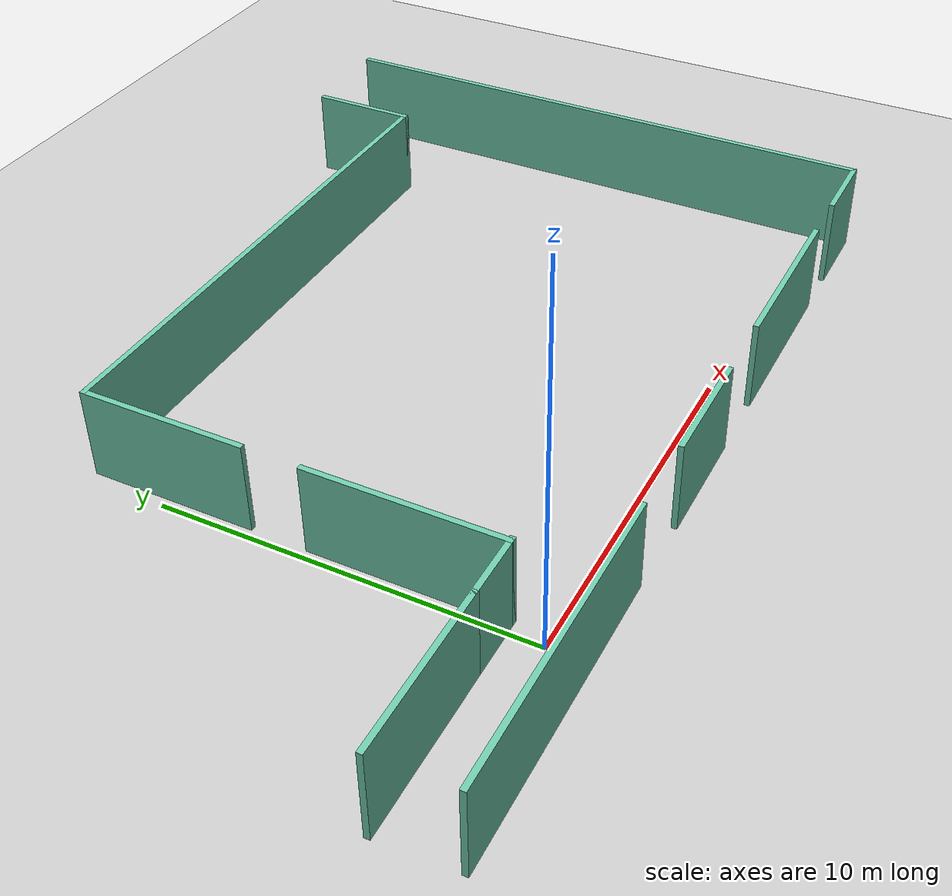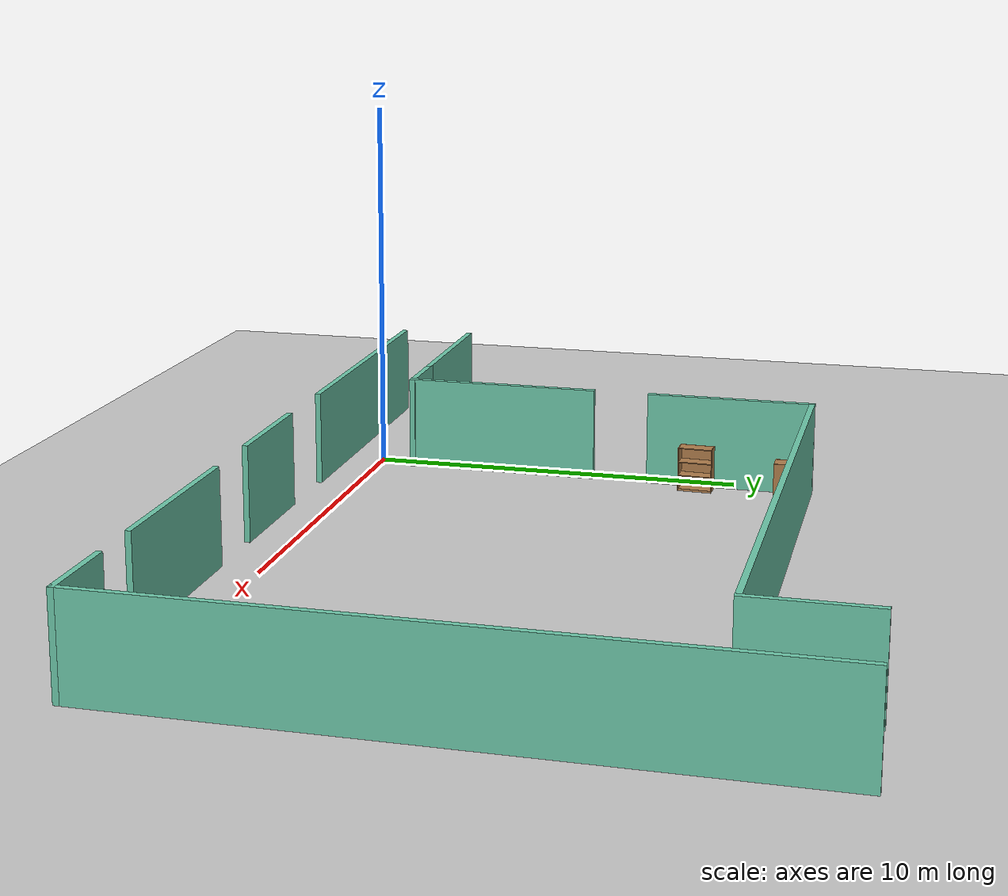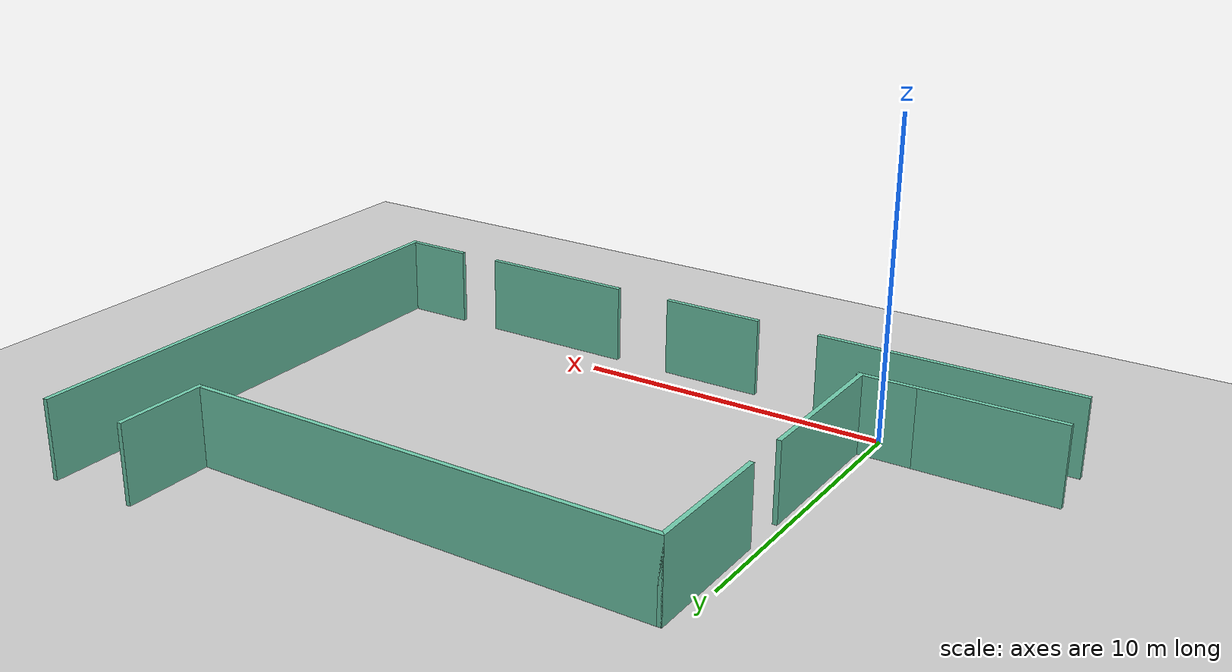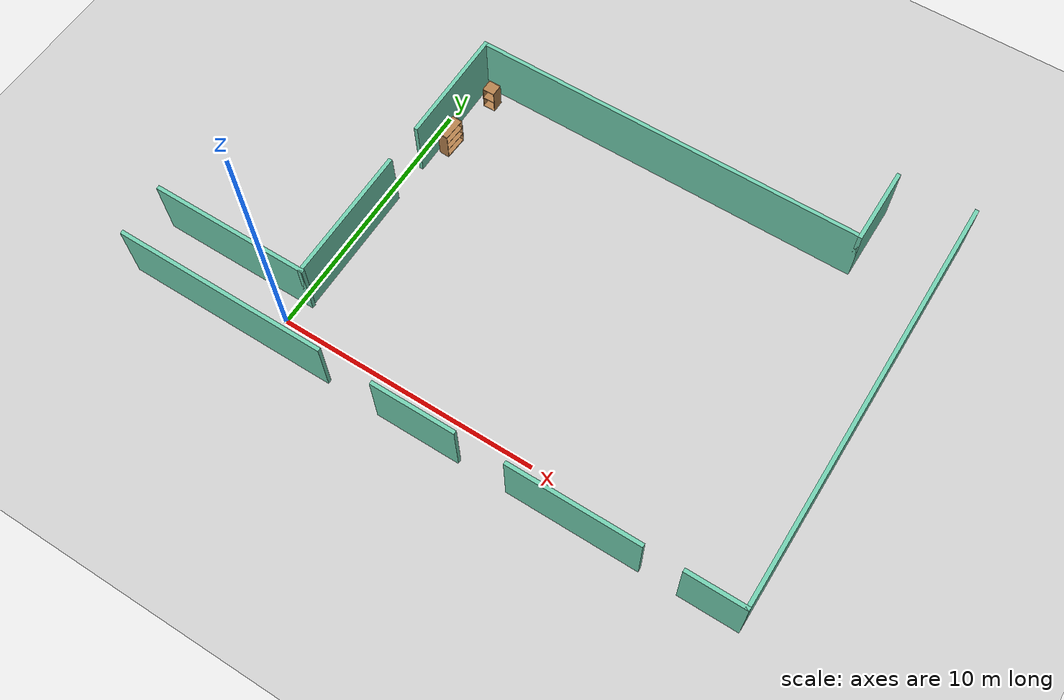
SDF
<sdf version="1.6">
 <world name="default">
  <light name="sun" type="directional">
   <pose>0 0 10 0 -0 0</pose>
   <diffuse>0.8 0.8 0.8 1</diffuse>
   <specular>0.2 0.2 0.2 1</specular>
   <attenuation>
    <range>1000</range>
    <constant>0.9</constant>
    <linear>0.01</linear>
    <quadratic>0.001</quadratic>
   </attenuation>
   <direction>-0.5 0.1 -0.9</direction>
  </light>
  <model name="ground_plane">
   <static>1</static>
   <link name="link">
    <collision name="collision">
     <geometry><plane><normal>0 0 1</normal><size>100 100</size></plane></geometry>
     <surface>
      <contact><collide_bitmask>65535</collide_bitmask></contact>
      <friction><ode><mu>100</mu><mu2>50</mu2></ode></friction>
     </surface>
    </collision>
    <visual name="visual">
     <cast_shadows>0</cast_shadows>
     <geometry><plane><normal>0 0 1</normal><size>100 100</size></plane></geometry>
     <material>
      <script><uri>file://media/materials/scripts/gazebo.material</uri><name>Gazebo/Grey</name></script>
     </material>
    </visual>
   </link>
  </model>
  <gravity>0 0 -9.8</gravity>
  <magnetic_field>6e-06 2.3e-05 -4.2e-05</magnetic_field>
  <atmosphere type="adiabatic"/>
  <physics name="default_physics" default="0" type="ode">
   <max_step_size>0.001</max_step_size>
   <real_time_factor>1</real_time_factor>
   <real_time_update_rate>1000</real_time_update_rate>
  </physics>
  <scene><ambient>0.4 0.4 0.4 1</ambient><background>0.7 0.7 0.7 1</background><shadows>1</shadows></scene>
  <audio><device>default</device></audio>
  <spherical_coordinates>
   <surface_model>EARTH_WGS84</surface_model>
   <latitude_deg>0</latitude_deg>
   <longitude_deg>0</longitude_deg>
   <elevation>0</elevation>
   <heading_deg>0</heading_deg>
  </spherical_coordinates>
  <model name="break_room">
   <pose>6.31041 6.95455 0 0 -0 0</pose>
   <link name="Wall_0">
    <collision name="Wall_0_Collision">
     <geometry><box><size>1.84305 0.15 2.5</size></box></geometry>
     <pose>0 0 1.25 0 -0 0</pose>
    </collision>
    <visual name="Wall_0_Visual">
     <pose>0 0 1.25 0 -0 0</pose>
     <geometry><box><size>1.84305 0.15 2.5</size></box></geometry>
     <material>
      <script><uri>file://media/materials/scripts/gazebo.material</uri><name>Gazebo/Grey</name></script>
      <ambient>0.435294 0.796078 0.67451 1</ambient>
     </material>
     <meta><layer>0</layer></meta>
    </visual>
    <pose>-6.79511 -5.97585 0 0 -0 0</pose>
   </link>
   <link name="Wall_1">
    <collision name="Wall_1_Collision">
     <geometry><box><size>5.25 0.15 2.5</size></box></geometry>
     <pose>0 0 1.25 0 -0 0</pose>
    </collision>
    <visual name="Wall_1_Visual">
     <pose>0 0 1.25 0 -0 0</pose>
     <geometry><box><size>5.25 0.15 2.5</size></box></geometry>
     <material>
      <script><uri>file://media/materials/scripts/gazebo.material</uri><name>Gazebo/Grey</name></script>
      <ambient>0.435294 0.796078 0.67451 1</ambient>
     </material>
     <meta><layer>0</layer></meta>
    </visual>
    <pose>-5.99511 -3.42585 0 0 -0 1.5708</pose>
   </link>
   <link name="Wall_10">
    <collision name="Wall_10_Collision">
     <geometry><box><size>5 0.15 2.5</size></box></geometry>
     <pose>0 0 1.25 0 -0 0</pose>
    </collision>
    <visual name="Wall_10_Visual">
     <pose>0 0 1.25 0 -0 0</pose>
     <geometry><box><size>5 0.15 2.5</size></box></geometry>
     <material>
      <script><uri>file://media/materials/scripts/gazebo.material</uri><name>Gazebo/Grey</name></script>
      <ambient>0.435294 0.796078 0.67451 1</ambient>
     </material>
     <meta><layer>0</layer></meta>
    </visual>
    <pose>5.93776 -8.04727 0 0 -0 3.14159</pose>
   </link>
   <link name="Wall_12">
    <collision name="Wall_12_Collision">
     <geometry><box><size>3.25 0.15 2.5</size></box></geometry>
     <pose>0 0 1.25 0 -0 0</pose>
    </collision>
    <visual name="Wall_12_Visual">
     <pose>0 0 1.25 0 -0 0</pose>
     <geometry><box><size>3.25 0.15 2.5</size></box></geometry>
     <material>
      <script><uri>file://media/materials/scripts/gazebo.material</uri><name>Gazebo/Grey</name></script>
      <ambient>0.435294 0.796078 0.67451 1</ambient>
     </material>
     <meta><layer>0</layer></meta>
    </visual>
    <pose>-0.02625 -8.04727 0 0 -0 3.14159</pose>
   </link>
   <link name="Wall_14">
    <collision name="Wall_14_Collision">
     <geometry><box><size>8.25 0.15 2.5</size></box></geometry>
     <pose>0 0 1.25 0 -0 0</pose>
    </collision>
    <visual name="Wall_14_Visual">
     <pose>0 0 1.25 0 -0 0</pose>
     <geometry><box><size>8.25 0.15 2.5</size></box></geometry>
     <material>
      <script><uri>file://media/materials/scripts/gazebo.material</uri><name>Gazebo/Grey</name></script>
      <ambient>0.435294 0.796078 0.67451 1</ambient>
     </material>
     <meta><layer>0</layer></meta>
    </visual>
    <pose>-7.82998 -8.00075 0 0 -0 3.14159</pose>
   </link>
   <link name="Wall_16">
    <collision name="Wall_16_Collision">
     <geometry><box><size>4.5 0.15 2.5</size></box></geometry>
     <pose>0 0 1.25 0 -0 0</pose>
    </collision>
    <visual name="Wall_16_Visual">
     <pose>0 0 1.25 0 -0 0</pose>
     <geometry><box><size>4.5 0.15 2.5</size></box></geometry>
     <material>
      <script><uri>file://media/materials/scripts/gazebo.material</uri><name>Gazebo/Grey</name></script>
      <ambient>0.435294 0.796078 0.67451 1</ambient>
     </material>
     <meta><layer>0</layer></meta>
    </visual>
    <pose>-9.81663 -5.97585 0 0 -0 3.14159</pose>
   </link>
   <link name="Wall_3">
    <collision name="Wall_3_Collision">
     <geometry><box><size>4.5 0.15 2.5</size></box></geometry>
     <pose>0 0 1.25 0 -0 0</pose>
    </collision>
    <visual name="Wall_3_Visual">
     <pose>0 0 1.25 0 -0 0</pose>
     <geometry><box><size>4.5 0.15 2.5</size></box></geometry>
     <material>
      <script><uri>file://media/materials/scripts/gazebo.material</uri><name>Gazebo/Grey</name></script>
      <ambient>0.435294 0.796078 0.67451 1</ambient>
     </material>
     <meta><layer>0</layer></meta>
    </visual>
    <pose>-5.98079 2.93498 0 0 -0 1.5708</pose>
   </link>
   <link name="Wall_4">
    <collision name="Wall_4_Collision">
     <geometry><box><size>15.25 0.15 2.5</size></box></geometry>
     <pose>0 0 1.25 0 -0 0</pose>
    </collision>
    <visual name="Wall_4_Visual">
     <pose>0 0 1.25 0 -0 0</pose>
     <geometry><box><size>15.25 0.15 2.5</size></box></geometry>
     <material>
      <script><uri>file://media/materials/scripts/gazebo.material</uri><name>Gazebo/Grey</name></script>
      <ambient>0.435294 0.796078 0.67451 1</ambient>
     </material>
     <meta><layer>0</layer></meta>
    </visual>
    <pose>1.56921 5.10998 0 0 -0 0</pose>
   </link>
   <link name="Wall_5">
    <collision name="Wall_5_Collision">
     <geometry><box><size>3 0.15 2.5</size></box></geometry>
     <pose>0 0 1.25 0 -0 0</pose>
    </collision>
    <visual name="Wall_5_Visual">
     <pose>0 0 1.25 0 -0 0</pose>
     <geometry><box><size>3 0.15 2.5</size></box></geometry>
     <material>
      <script><uri>file://media/materials/scripts/gazebo.material</uri><name>Gazebo/Grey</name></script>
      <ambient>0.435294 0.796078 0.67451 1</ambient>
     </material>
     <meta><layer>0</layer></meta>
    </visual>
    <pose>9.11921 6.53498 0 0 -0 1.5708</pose>
   </link>
   <link name="Wall_7">
    <collision name="Wall_7_Collision">
     <geometry><box><size>16.25 0.15 2.5</size></box></geometry>
     <pose>0 0 1.25 0 -0 0</pose>
    </collision>
    <visual name="Wall_7_Visual">
     <pose>0 0 1.25 0 -0 0</pose>
     <geometry><box><size>16.25 0.15 2.5</size></box></geometry>
     <material>
      <script><uri>file://media/materials/scripts/gazebo.material</uri><name>Gazebo/Grey</name></script>
      <ambient>0.435294 0.796078 0.67451 1</ambient>
     </material>
     <meta><layer>0</layer></meta>
    </visual>
    <pose>11.9916 0 0 0 -0 -1.5708</pose>
   </link>
   <link name="Wall_8">
    <collision name="Wall_8_Collision">
     <geometry><box><size>2.25 0.15 2.5</size></box></geometry>
     <pose>0 0 1.25 0 -0 0</pose>
    </collision>
    <visual name="Wall_8_Visual">
     <pose>0 0 1.25 0 -0 0</pose>
     <geometry><box><size>2.25 0.15 2.5</size></box></geometry>
     <material>
      <script><uri>file://media/materials/scripts/gazebo.material</uri><name>Gazebo/Grey</name></script>
      <ambient>0.435294 0.796078 0.67451 1</ambient>
     </material>
     <meta><layer>0</layer></meta>
    </visual>
    <pose>10.9416 -8.05 0 0 -0 3.14159</pose>
   </link>
   <static>1</static>
  </model>
  <model name="cabinet">
   <static>1</static>
   <link name="cabinet_bottom_plate">
    <inertial>
     <pose>0 0 -1 0 -0 0</pose>
     <inertia><ixx>2.05</ixx><ixy>0</ixy><ixz>0</ixz><iyy>2.05</iyy><iyz>0</iyz><izz>2.05</izz></inertia>
     <mass>25</mass>
    </inertial>
    <collision name="cabinet_bottom_plate_geom">
     <pose>0 0 0.01 0 -0 0</pose>
     <geometry><box><size>0.45 0.45 0.02</size></box></geometry>
    </collision>
    <visual name="cabinet_bottom_plate_geom_visual">
     <pose>0 0 0.01 0 -0 0</pose>
     <geometry><box><size>0.45 0.45 0.02</size></box></geometry>
     <material>
      <script><uri>file://media/materials/scripts/gazebo.material</uri><name>Gazebo/Wood</name></script>
     </material>
    </visual>
    <collision name="cabinet_bottom_plate_geom_cabinet_back_plate">
     <pose>0.235 0 0.51 0 -0 0</pose>
     <geometry><box><size>0.02 0.45 1.02</size></box></geometry>
    </collision>
    <visual name="cabinet_bottom_plate_geom_cabinet_back_plate_visual">
     <pose>0.235 0 0.51 0 -0 0</pose>
     <geometry><box><size>0.02 0.45 1.02</size></box></geometry>
     <material>
      <script><uri>file://media/materials/scripts/gazebo.material</uri><name>Gazebo/Wood</name></script>
     </material>
    </visual>
    <collision name="cabinet_bottom_plate_geom_cabinet_left_plate">
     <pose>0 0.235 0.51 0 -0 0</pose>
     <geometry><box><size>0.45 0.02 1.02</size></box></geometry>
    </collision>
    <visual name="cabinet_bottom_plate_geom_cabinet_left_plate_visual">
     <pose>0 0.235 0.51 0 -0 0</pose>
     <geometry><box><size>0.45 0.02 1.02</size></box></geometry>
     <material>
      <script><uri>file://media/materials/scripts/gazebo.material</uri><name>Gazebo/Wood</name></script>
     </material>
    </visual>
    <collision name="cabinet_bottom_plate_geom_cabinet_middle_plate">
     <pose>0 0 0.51 0 -0 0</pose>
     <geometry><box><size>0.45 0.45 0.02</size></box></geometry>
    </collision>
    <visual name="cabinet_bottom_plate_geom_cabinet_middle_plate_visual">
     <pose>0 0 0.51 0 -0 0</pose>
     <geometry><box><size>0.45 0.45 0.02</size></box></geometry>
     <material>
      <script><uri>file://media/materials/scripts/gazebo.material</uri><name>Gazebo/Wood</name></script>
     </material>
    </visual>
    <collision name="cabinet_bottom_plate_geom_cabinet_right_plate">
     <pose>0 -0.235 0.51 0 -0 0</pose>
     <geometry><box><size>0.45 0.02 1.02</size></box></geometry>
    </collision>
    <visual name="cabinet_bottom_plate_geom_cabinet_right_plate_visual">
     <pose>0 -0.235 0.51 0 -0 0</pose>
     <geometry><box><size>0.45 0.02 1.02</size></box></geometry>
     <material>
      <script><uri>file://media/materials/scripts/gazebo.material</uri><name>Gazebo/Wood</name></script>
     </material>
    </visual>
    <collision name="cabinet_bottom_plate_geom_cabinet_top_plate">
     <pose>0 0 1.01 0 -0 0</pose>
     <geometry><box><size>0.45 0.45 0.02</size></box></geometry>
    </collision>
    <visual name="cabinet_bottom_plate_geom_cabinet_top_plate_visual">
     <pose>0 0 1.01 0 -0 0</pose>
     <geometry><box><size>0.45 0.45 0.02</size></box></geometry>
     <material>
      <script><uri>file://media/materials/scripts/gazebo.material</uri><name>Gazebo/Wood</name></script>
     </material>
    </visual>
   </link>
   <pose>0.95391 11.4121 0 0 -0 1.56954</pose>
  </model>
  <model name="bookshelf">
   <static>1</static>
   <link name="link">
    <inertial><mass>1</mass></inertial>
    <collision name="back">
     <pose>0 0.005 0.6 0 -0 0</pose>
     <geometry><box><size>0.9 0.01 1.2</size></box></geometry>
    </collision>
    <visual name="visual1">
     <pose>0 0.005 0.6 0 -0 0</pose>
     <geometry><box><size>0.9 0.01 1.2</size></box></geometry>
     <material>
      <script><uri>file://media/materials/scripts/gazebo.material</uri><name>Gazebo/Wood</name></script>
     </material>
    </visual>
    <collision name="left_side">
     <pose>0.45 -0.195 0.6 0 -0 0</pose>
     <geometry><box><size>0.02 0.4 1.2</size></box></geometry>
    </collision>
    <visual name="visual2">
     <pose>0.45 -0.195 0.6 0 -0 0</pose>
     <geometry><box><size>0.02 0.4 1.2</size></box></geometry>
     <material>
      <script><uri>file://media/materials/scripts/gazebo.material</uri><name>Gazebo/Wood</name></script>
     </material>
    </visual>
    <collision name="right_side">
     <pose>-0.45 -0.195 0.6 0 -0 0</pose>
     <geometry><box><size>0.02 0.4 1.2</size></box></geometry>
    </collision>
    <visual name="visual3">
     <pose>-0.45 -0.195 0.6 0 -0 0</pose>
     <geometry><box><size>0.02 0.4 1.2</size></box></geometry>
     <material>
      <script><uri>file://media/materials/scripts/gazebo.material</uri><name>Gazebo/Wood</name></script>
     </material>
    </visual>
    <collision name="bottom">
     <pose>0 -0.195 0.03 0 -0 0</pose>
     <geometry><box><size>0.88 0.4 0.06</size></box></geometry>
    </collision>
    <visual name="visual4">
     <pose>0 -0.195 0.03 0 -0 0</pose>
     <geometry><box><size>0.88 0.4 0.06</size></box></geometry>
     <material>
      <script><uri>file://media/materials/scripts/gazebo.material</uri><name>Gazebo/Wood</name></script>
     </material>
    </visual>
    <collision name="top">
     <pose>0 -0.195 1.19 0 -0 0</pose>
     <geometry><box><size>0.88 0.4 0.02</size></box></geometry>
    </collision>
    <visual name="visual5">
     <pose>0 -0.195 1.19 0 -0 0</pose>
     <geometry><box><size>0.88 0.4 0.02</size></box></geometry>
     <material>
      <script><uri>file://media/materials/scripts/gazebo.material</uri><name>Gazebo/Wood</name></script>
     </material>
    </visual>
    <collision name="low_shelf">
     <pose>0 -0.195 0.43 0 -0 0</pose>
     <geometry><box><size>0.88 0.4 0.02</size></box></geometry>
    </collision>
    <visual name="visual6">
     <pose>0 -0.195 0.43 0 -0 0</pose>
     <geometry><box><size>0.88 0.4 0.02</size></box></geometry>
     <material>
      <script><uri>file://media/materials/scripts/gazebo.material</uri><name>Gazebo/Wood</name></script>
     </material>
    </visual>
    <collision name="high_shelf">
     <pose>0 -0.195 0.8 0 -0 0</pose>
     <geometry><box><size>0.88 0.4 0.02</size></box></geometry>
    </collision>
    <visual name="visual7">
     <pose>0 -0.195 0.8 0 -0 0</pose>
     <geometry><box><size>0.88 0.4 0.02</size></box></geometry>
     <material>
      <script><uri>file://media/materials/scripts/gazebo.material</uri><name>Gazebo/Wood</name></script>
     </material>
    </visual>
   </link>
   <pose>0.530064 9.05979 0 0 -0 1.52343</pose>
  </model>
 </world>
</sdf>
